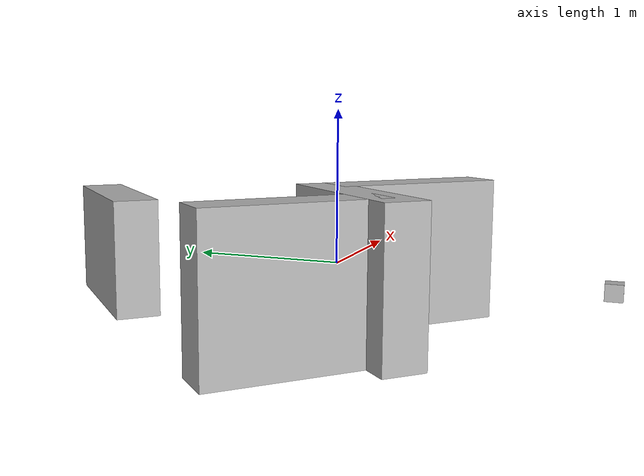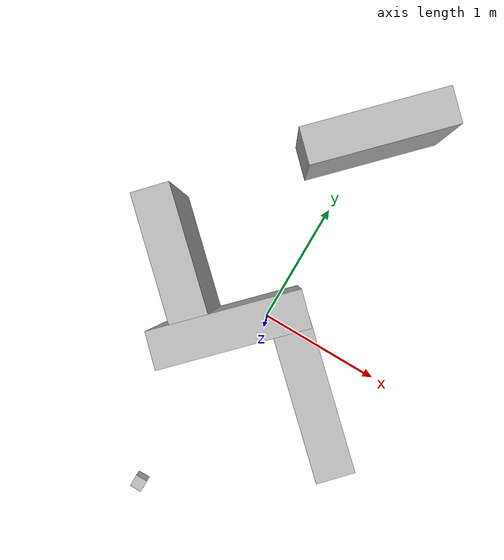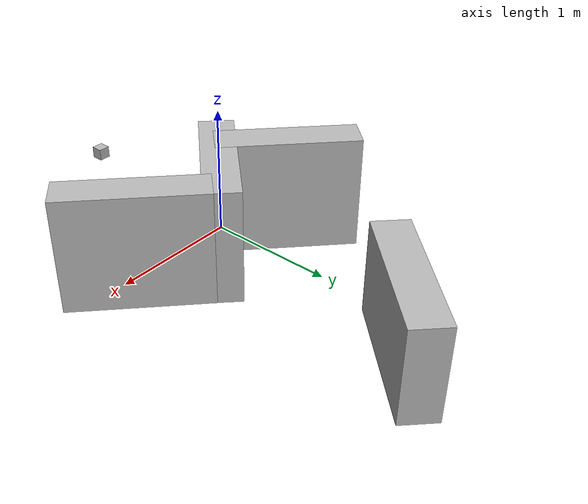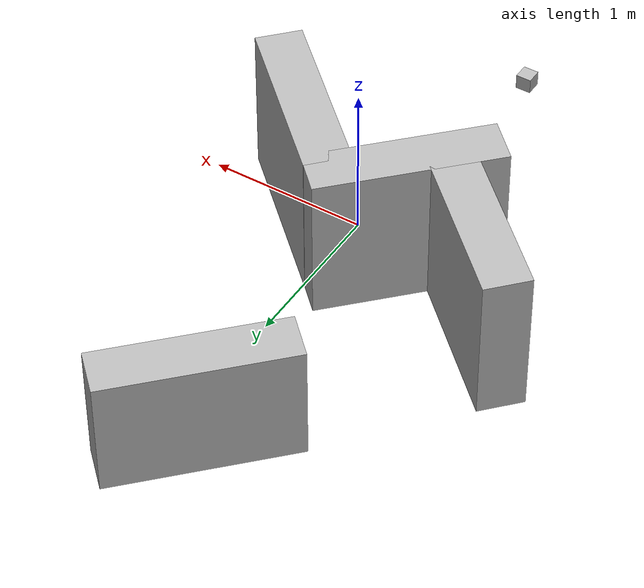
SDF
<?xml version='1.0'?>
<sdf version='1.6'>
  <model name='obstacles_stage3'>
    <pose frame=''>0 0 0 0 0 0</pose>
    <link name='obstacle'>
      <!-- Define the U-shaped obstacle using three box geometries -->

      <!-- single wall -->
      <collision name='single_wall'>
        <pose>0 1.7 0 0 0 0.8</pose> <!-- Adjust pose as needed -->
        <geometry>
          <box>
            <size>1.2 0.3 0.8</size> <!-- Adjust size as needed -->
          </box>
        </geometry>
      </collision>
      <visual name='single_wall'>
        <pose>0 1.7 0 0 0 0.8</pose> <!-- Adjust pose as needed -->
        <geometry>
          <box>
            <size>1.2 0.3 0.8</size> <!-- Adjust size as needed -->
          </box>
        </geometry>
      </visual>

      <!-- little square -->
      <collision name='little_square'>
        <pose>-0.2 -1.7 0 0 0 0</pose> <!-- Adjust pose as needed -->
        <geometry>
          <box>
            <size>0.1 0.1 0.1</size> <!-- Adjust size as needed -->
          </box>
        </geometry>
      </collision>
      <visual name='little_square'>
        <pose>-0.2 -1.7 0 0 0 0</pose> <!-- Adjust pose as needed -->
        <geometry>
          <box>
            <size>0.1 0.1 0.1</size> <!-- Adjust size as needed -->
          </box>
        </geometry>
      </visual>

      <!-- composite wall 1 -->
      <collision name='compo_wall_1'>
        <pose>-0.2 -0.2 0 0 0 0.8</pose> <!-- Adjust pose as needed -->
        <geometry>
          <box>
            <size>1.2 0.3 1</size> <!-- Adjust size as needed -->
          </box>
        </geometry>
      </collision>
      <visual name='compo_wall_1'>
        <pose>-0.2 -0.2 0 0 0 0.8</pose> <!-- Adjust pose as needed -->
        <geometry>
          <box>
            <size>1.2 0.3 1</size> <!-- Adjust size as needed -->
          </box>
        </geometry>
      </visual>

      <!-- composite wall 2 -->
      <collision name='compo_wall_2'>
        <pose>-0.8 0 0 0 0 -0.75</pose> <!-- Adjust pose as needed -->
        <geometry>
          <box>
            <size>1.2 0.3 1</size> <!-- Adjust size as needed -->
          </box>
        </geometry>
      </collision>
      <visual name='compo_wall_2'>
        <pose>-0.8 0 0 0 0 -0.75</pose> <!-- Adjust pose as needed -->
        <geometry>
          <box>
            <size>1.2 0.3 1</size> <!-- Adjust size as needed -->
          </box>
        </geometry>
      </visual>

      <!-- composite wall 3 -->
      <collision name='compo_wall_3'>
        <pose>0.6 -.33 0 0 0 -0.75</pose> <!-- Adjust pose as needed -->
        <geometry>
          <box>
            <size>1.2 0.3 1</size> <!-- Adjust size as needed -->
          </box>
        </geometry>
      </collision>
      <visual name='compo_wall_3'>
        <pose>0.6 -.33 0 0 0 -0.75</pose> <!-- Adjust pose as needed -->
        <geometry>
          <box>
            <size>1.2 0.3 1</size> <!-- Adjust size as needed -->
          </box>
        </geometry>
      </visual>

    </link>
    <static>1</static>
  </model>
</sdf>
